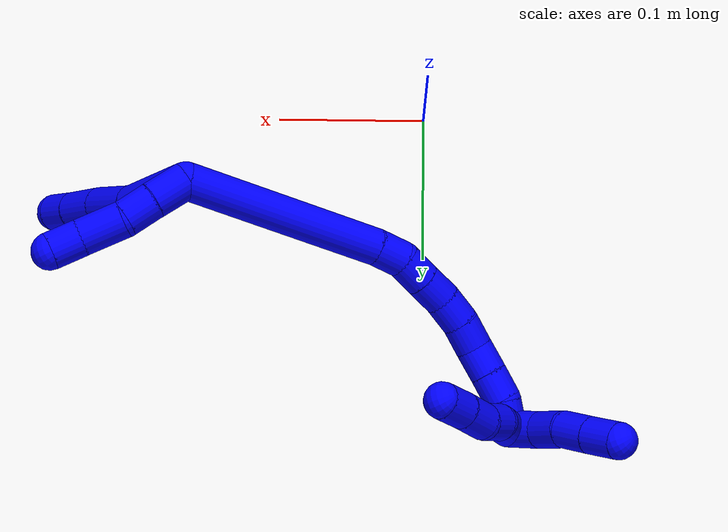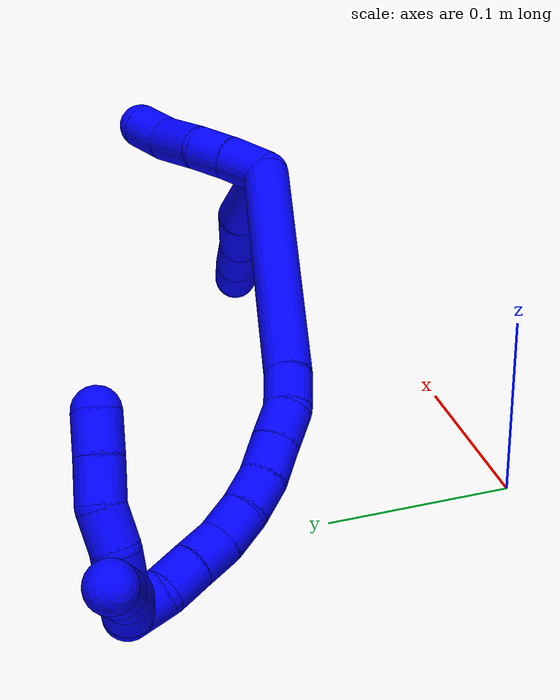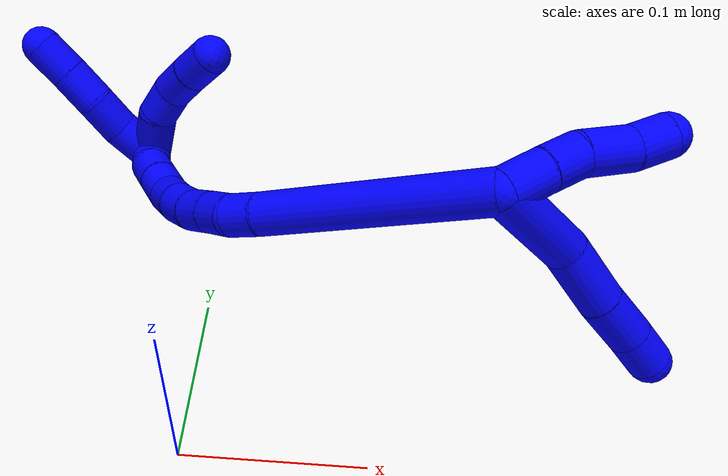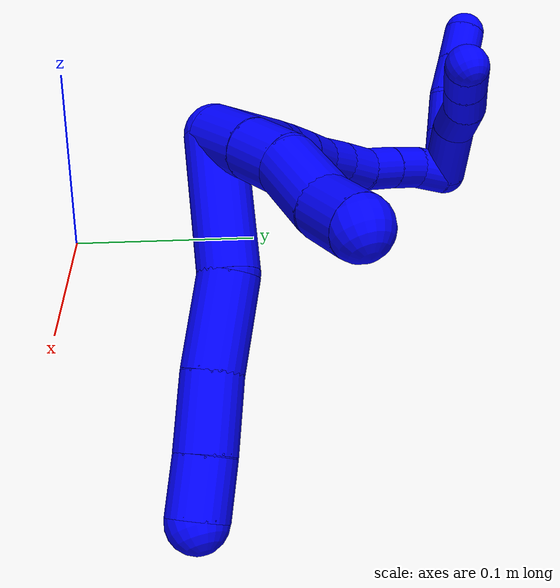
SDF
<sdf version="1.7">
 <world name="default">
  <model name="1">
   <static>0</static>
   <link name="1">
    <collision name="collision-cylinder-e_1_2_8">
     <pose>-0.005585 -0.004807 -0.027696 2.96976 -0.196118 -1.70333</pose>
     <geometry><cylinder><radius>0.0125</radius><length>0.057319</length></cylinder></geometry>
     <surface>
      <friction><ode><mu>1.16</mu><mu2>1.16</mu2><slip1>0</slip1><slip2>0</slip2></ode></friction>
      <contact><ode><kp>1e+06</kp><kd>1</kd><max_vel>0</max_vel><min_depth>0.001</min_depth></ode></contact>
     </surface>
    </collision>
    <visual name="visual-cylinder-e_1_2_8">
     <pose>-0.005585 -0.004807 -0.027696 2.96976 -0.196118 -1.70333</pose>
     <geometry><cylinder><radius>0.0125</radius><length>0.057319</length></cylinder></geometry>
     <material><ambient>0 0 1 1</ambient></material>
    </visual>
    <collision name="collision-cylinder-e_2_8_9">
     <pose>-0.015736 -0.017608 -0.072221 2.69811 -0.240388 -0.983619</pose>
     <geometry><cylinder><radius>0.0125</radius><length>0.038365</length></cylinder></geometry>
     <surface>
      <friction><ode><mu>1.16</mu><mu2>1.16</mu2><slip1>0</slip1><slip2>0</slip2></ode></friction>
      <contact><ode><kp>1e+06</kp><kd>1</kd><max_vel>0</max_vel><min_depth>0.001</min_depth></ode></contact>
     </surface>
    </collision>
    <visual name="visual-cylinder-e_2_8_9">
     <pose>-0.015736 -0.017608 -0.072221 2.69811 -0.240388 -0.983619</pose>
     <geometry><cylinder><radius>0.0125</radius><length>0.038365</length></cylinder></geometry>
     <material><ambient>0 0 1 1</ambient></material>
    </visual>
    <collision name="collision-cylinder-e_3_9_10">
     <pose>-0.023464 -0.030834 -0.103211 2.78771 -0.206347 -1.04976</pose>
     <geometry><cylinder><radius>0.0125</radius><length>0.030848</length></cylinder></geometry>
     <surface>
      <friction><ode><mu>1.16</mu><mu2>1.16</mu2><slip1>0</slip1><slip2>0</slip2></ode></friction>
      <contact><ode><kp>1e+06</kp><kd>1</kd><max_vel>0</max_vel><min_depth>0.001</min_depth></ode></contact>
     </surface>
    </collision>
    <visual name="visual-cylinder-e_3_9_10">
     <pose>-0.023464 -0.030834 -0.103211 2.78771 -0.206347 -1.04976</pose>
     <geometry><cylinder><radius>0.0125</radius><length>0.030848</length></cylinder></geometry>
     <material><ambient>0 0 1 1</ambient></material>
    </visual>
    <collision name="collision-cylinder-e_4_10_6">
     <pose>-0.029229 -0.040488 -0.127924 2.74467 -0.223902 -1.01946</pose>
     <geometry><cylinder><radius>0.0125</radius><length>0.023468</length></cylinder></geometry>
     <surface>
      <friction><ode><mu>1.16</mu><mu2>1.16</mu2><slip1>0</slip1><slip2>0</slip2></ode></friction>
      <contact><ode><kp>1e+06</kp><kd>1</kd><max_vel>0</max_vel><min_depth>0.001</min_depth></ode></contact>
     </surface>
    </collision>
    <visual name="visual-cylinder-e_4_10_6">
     <pose>-0.029229 -0.040488 -0.127924 2.74467 -0.223902 -1.01946</pose>
     <geometry><cylinder><radius>0.0125</radius><length>0.023468</length></cylinder></geometry>
     <material><ambient>0 0 1 1</ambient></material>
    </visual>
    <collision name="collision-cylinder-e_1_2_11">
     <pose>0.006742 0.005735 -0.009243 -2.5863 0.554837 -1.56994</pose>
     <geometry><cylinder><radius>0.0125</radius><length>0.025595</length></cylinder></geometry>
     <surface>
      <friction><ode><mu>1.16</mu><mu2>1.16</mu2><slip1>0</slip1><slip2>0</slip2></ode></friction>
      <contact><ode><kp>1e+06</kp><kd>1</kd><max_vel>0</max_vel><min_depth>0.001</min_depth></ode></contact>
     </surface>
    </collision>
    <visual name="visual-cylinder-e_1_2_11">
     <pose>0.006742 0.005735 -0.009243 -2.5863 0.554837 -1.56994</pose>
     <geometry><cylinder><radius>0.0125</radius><length>0.025595</length></cylinder></geometry>
     <material><ambient>0 0 1 1</ambient></material>
    </visual>
    <collision name="collision-cylinder-e_2_11_12">
     <pose>0.018677 0.016365 -0.026684 -2.60321 0.498164 -1.48965</pose>
     <geometry><cylinder><radius>0.0125</radius><length>0.021739</length></cylinder></geometry>
     <surface>
      <friction><ode><mu>1.16</mu><mu2>1.16</mu2><slip1>0</slip1><slip2>0</slip2></ode></friction>
      <contact><ode><kp>1e+06</kp><kd>1</kd><max_vel>0</max_vel><min_depth>0.001</min_depth></ode></contact>
     </surface>
    </collision>
    <visual name="visual-cylinder-e_2_11_12">
     <pose>0.018677 0.016365 -0.026684 -2.60321 0.498164 -1.48965</pose>
     <geometry><cylinder><radius>0.0125</radius><length>0.021739</length></cylinder></geometry>
     <material><ambient>0 0 1 1</ambient></material>
    </visual>
    <collision name="collision-cylinder-e_3_12_13">
     <pose>0.030221 0.02448 -0.048461 -2.90883 0.427029 -2.15255</pose>
     <geometry><cylinder><radius>0.0125</radius><length>0.030664</length></cylinder></geometry>
     <surface>
      <friction><ode><mu>1.16</mu><mu2>1.16</mu2><slip1>0</slip1><slip2>0</slip2></ode></friction>
      <contact><ode><kp>1e+06</kp><kd>1</kd><max_vel>0</max_vel><min_depth>0.001</min_depth></ode></contact>
     </surface>
    </collision>
    <visual name="visual-cylinder-e_3_12_13">
     <pose>0.030221 0.02448 -0.048461 -2.90883 0.427029 -2.15255</pose>
     <geometry><cylinder><radius>0.0125</radius><length>0.030664</length></cylinder></geometry>
     <material><ambient>0 0 1 1</ambient></material>
    </visual>
    <collision name="collision-cylinder-e_4_13_5">
     <pose>0.042822 0.031203 -0.070386 -2.74413 0.604339 -1.99438</pose>
     <geometry><cylinder><radius>0.0125</radius><length>0.022002</length></cylinder></geometry>
     <surface>
      <friction><ode><mu>1.16</mu><mu2>1.16</mu2><slip1>0</slip1><slip2>0</slip2></ode></friction>
      <contact><ode><kp>1e+06</kp><kd>1</kd><max_vel>0</max_vel><min_depth>0.001</min_depth></ode></contact>
     </surface>
    </collision>
    <visual name="visual-cylinder-e_4_13_5">
     <pose>0.042822 0.031203 -0.070386 -2.74413 0.604339 -1.99438</pose>
     <geometry><cylinder><radius>0.0125</radius><length>0.022002</length></cylinder></geometry>
     <material><ambient>0 0 1 1</ambient></material>
    </visual>
    <collision name="collision-cylinder-e_1_2_14">
     <pose>-0.060368 0.017391 0.029592 -0.531326 -1.05379 0.31398</pose>
     <geometry><cylinder><radius>0.0125</radius><length>0.138887</length></cylinder></geometry>
     <surface>
      <friction><ode><mu>1.16</mu><mu2>1.16</mu2><slip1>0</slip1><slip2>0</slip2></ode></friction>
      <contact><ode><kp>1e+06</kp><kd>1</kd><max_vel>0</max_vel><min_depth>0.001</min_depth></ode></contact>
     </surface>
    </collision>
    <visual name="visual-cylinder-e_1_2_14">
     <pose>-0.060368 0.017391 0.029592 -0.531326 -1.05379 0.31398</pose>
     <geometry><cylinder><radius>0.0125</radius><length>0.138887</length></cylinder></geometry>
     <material><ambient>0 0 1 1</ambient></material>
    </visual>
    <collision name="collision-cylinder-e_2_14_15">
     <pose>-0.129758 0.038184 0.062881 -0.743822 -1.0628 0.450769</pose>
     <geometry><cylinder><radius>0.0125</radius><length>0.020654</length></cylinder></geometry>
     <surface>
      <friction><ode><mu>1.16</mu><mu2>1.16</mu2><slip1>0</slip1><slip2>0</slip2></ode></friction>
      <contact><ode><kp>1e+06</kp><kd>1</kd><max_vel>0</max_vel><min_depth>0.001</min_depth></ode></contact>
     </surface>
    </collision>
    <visual name="visual-cylinder-e_2_14_15">
     <pose>-0.129758 0.038184 0.062881 -0.743822 -1.0628 0.450769</pose>
     <geometry><cylinder><radius>0.0125</radius><length>0.020654</length></cylinder></geometry>
     <material><ambient>0 0 1 1</ambient></material>
    </visual>
    <collision name="collision-cylinder-e_3_15_16">
     <pose>-0.147136 0.047048 0.067789 -1.35262 -0.980723 0.80959</pose>
     <geometry><cylinder><radius>0.0125</radius><length>0.020112</length></cylinder></geometry>
     <surface>
      <friction><ode><mu>1.16</mu><mu2>1.16</mu2><slip1>0</slip1><slip2>0</slip2></ode></friction>
      <contact><ode><kp>1e+06</kp><kd>1</kd><max_vel>0</max_vel><min_depth>0.001</min_depth></ode></contact>
     </surface>
    </collision>
    <visual name="visual-cylinder-e_3_15_16">
     <pose>-0.147136 0.047048 0.067789 -1.35262 -0.980723 0.80959</pose>
     <geometry><cylinder><radius>0.0125</radius><length>0.020112</length></cylinder></geometry>
     <material><ambient>0 0 1 1</ambient></material>
    </visual>
    <collision name="collision-cylinder-e_4_16_17">
     <pose>-0.164006 0.057755 0.070213 -1.3435 -1.00704 0.825677</pose>
     <geometry><cylinder><radius>0.0125</radius><length>0.020145</length></cylinder></geometry>
     <surface>
      <friction><ode><mu>1.16</mu><mu2>1.16</mu2><slip1>0</slip1><slip2>0</slip2></ode></friction>
      <contact><ode><kp>1e+06</kp><kd>1</kd><max_vel>0</max_vel><min_depth>0.001</min_depth></ode></contact>
     </surface>
    </collision>
    <visual name="visual-cylinder-e_4_16_17">
     <pose>-0.164006 0.057755 0.070213 -1.3435 -1.00704 0.825677</pose>
     <geometry><cylinder><radius>0.0125</radius><length>0.020145</length></cylinder></geometry>
     <material><ambient>0 0 1 1</ambient></material>
    </visual>
    <collision name="collision-cylinder-e_5_17_18">
     <pose>-0.179966 0.069676 0.072297 -1.44101 -0.835571 0.743271</pose>
     <geometry><cylinder><radius>0.0125</radius><length>0.020079</length></cylinder></geometry>
     <surface>
      <friction><ode><mu>1.16</mu><mu2>1.16</mu2><slip1>0</slip1><slip2>0</slip2></ode></friction>
      <contact><ode><kp>1e+06</kp><kd>1</kd><max_vel>0</max_vel><min_depth>0.001</min_depth></ode></contact>
     </surface>
    </collision>
    <visual name="visual-cylinder-e_5_17_18">
     <pose>-0.179966 0.069676 0.072297 -1.44101 -0.835571 0.743271</pose>
     <geometry><cylinder><radius>0.0125</radius><length>0.020079</length></cylinder></geometry>
     <material><ambient>0 0 1 1</ambient></material>
    </visual>
    <collision name="collision-cylinder-e_6_18_19">
     <pose>-0.194207 0.083698 0.072682 -1.63691 -0.745441 0.791409</pose>
     <geometry><cylinder><radius>0.0125</radius><length>0.020035</length></cylinder></geometry>
     <surface>
      <friction><ode><mu>1.16</mu><mu2>1.16</mu2><slip1>0</slip1><slip2>0</slip2></ode></friction>
      <contact><ode><kp>1e+06</kp><kd>1</kd><max_vel>0</max_vel><min_depth>0.001</min_depth></ode></contact>
     </surface>
    </collision>
    <visual name="visual-cylinder-e_6_18_19">
     <pose>-0.194207 0.083698 0.072682 -1.63691 -0.745441 0.791409</pose>
     <geometry><cylinder><radius>0.0125</radius><length>0.020035</length></cylinder></geometry>
     <material><ambient>0 0 1 1</ambient></material>
    </visual>
    <collision name="collision-cylinder-e_7_19_20">
     <pose>-0.206062 0.099666 0.073111 -1.46505 -0.528257 0.477251</pose>
     <geometry><cylinder><radius>0.0125</radius><length>0.020078</length></cylinder></geometry>
     <surface>
      <friction><ode><mu>1.16</mu><mu2>1.16</mu2><slip1>0</slip1><slip2>0</slip2></ode></friction>
      <contact><ode><kp>1e+06</kp><kd>1</kd><max_vel>0</max_vel><min_depth>0.001</min_depth></ode></contact>
     </surface>
    </collision>
    <visual name="visual-cylinder-e_7_19_20">
     <pose>-0.206062 0.099666 0.073111 -1.46505 -0.528257 0.477251</pose>
     <geometry><cylinder><radius>0.0125</radius><length>0.020078</length></cylinder></geometry>
     <material><ambient>0 0 1 1</ambient></material>
    </visual>
    <collision name="collision-cylinder-e_8_20_21">
     <pose>-0.216342 0.116801 0.074614 -1.50189 -0.548954 0.514016</pose>
     <geometry><cylinder><radius>0.0125</radius><length>0.020006</length></cylinder></geometry>
     <surface>
      <friction><ode><mu>1.16</mu><mu2>1.16</mu2><slip1>0</slip1><slip2>0</slip2></ode></friction>
      <contact><ode><kp>1e+06</kp><kd>1</kd><max_vel>0</max_vel><min_depth>0.001</min_depth></ode></contact>
     </surface>
    </collision>
    <visual name="visual-cylinder-e_8_20_21">
     <pose>-0.216342 0.116801 0.074614 -1.50189 -0.548954 0.514016</pose>
     <geometry><cylinder><radius>0.0125</radius><length>0.020006</length></cylinder></geometry>
     <material><ambient>0 0 1 1</ambient></material>
    </visual>
    <collision name="collision-cylinder-e_9_21_1">
     <pose>-0.225875 0.134028 0.072858 -1.83352 -0.445959 0.575176</pose>
     <geometry><cylinder><radius>0.0125</radius><length>0.020002</length></cylinder></geometry>
     <surface>
      <friction><ode><mu>1.16</mu><mu2>1.16</mu2><slip1>0</slip1><slip2>0</slip2></ode></friction>
      <contact><ode><kp>1e+06</kp><kd>1</kd><max_vel>0</max_vel><min_depth>0.001</min_depth></ode></contact>
     </surface>
    </collision>
    <visual name="visual-cylinder-e_9_21_1">
     <pose>-0.225875 0.134028 0.072858 -1.83352 -0.445959 0.575176</pose>
     <geometry><cylinder><radius>0.0125</radius><length>0.020002</length></cylinder></geometry>
     <material><ambient>0 0 1 1</ambient></material>
    </visual>
    <collision name="collision-cylinder-e_1_1_22">
     <pose>-0.21489 0.146567 0.076754 -0.550005 1.12458 -0.351916</pose>
     <geometry><cylinder><radius>0.0125</radius><length>0.033919</length></cylinder></geometry>
     <surface>
      <friction><ode><mu>1.16</mu><mu2>1.16</mu2><slip1>0</slip1><slip2>0</slip2></ode></friction>
      <contact><ode><kp>1e+06</kp><kd>1</kd><max_vel>0</max_vel><min_depth>0.001</min_depth></ode></contact>
     </surface>
    </collision>
    <visual name="visual-cylinder-e_1_1_22">
     <pose>-0.21489 0.146567 0.076754 -0.550005 1.12458 -0.351916</pose>
     <geometry><cylinder><radius>0.0125</radius><length>0.033919</length></cylinder></geometry>
     <material><ambient>0 0 1 1</ambient></material>
    </visual>
    <collision name="collision-cylinder-e_2_22_23">
     <pose>-0.189404 0.152936 0.083306 -1.44869 1.32436 -1.20767</pose>
     <geometry><cylinder><radius>0.0125</radius><length>0.021009</length></cylinder></geometry>
     <surface>
      <friction><ode><mu>1.16</mu><mu2>1.16</mu2><slip1>0</slip1><slip2>0</slip2></ode></friction>
      <contact><ode><kp>1e+06</kp><kd>1</kd><max_vel>0</max_vel><min_depth>0.001</min_depth></ode></contact>
     </surface>
    </collision>
    <visual name="visual-cylinder-e_2_22_23">
     <pose>-0.189404 0.152936 0.083306 -1.44869 1.32436 -1.20767</pose>
     <geometry><cylinder><radius>0.0125</radius><length>0.021009</length></cylinder></geometry>
     <material><ambient>0 0 1 1</ambient></material>
    </visual>
    <collision name="collision-cylinder-e_3_23_24">
     <pose>-0.167697 0.154463 0.083611 1.57765 1.48277 1.4896</pose>
     <geometry><cylinder><radius>0.0125</radius><length>0.023129</length></cylinder></geometry>
     <surface>
      <friction><ode><mu>1.16</mu><mu2>1.16</mu2><slip1>0</slip1><slip2>0</slip2></ode></friction>
      <contact><ode><kp>1e+06</kp><kd>1</kd><max_vel>0</max_vel><min_depth>0.001</min_depth></ode></contact>
     </surface>
    </collision>
    <visual name="visual-cylinder-e_3_23_24">
     <pose>-0.167697 0.154463 0.083611 1.57765 1.48277 1.4896</pose>
     <geometry><cylinder><radius>0.0125</radius><length>0.023129</length></cylinder></geometry>
     <material><ambient>0 0 1 1</ambient></material>
    </visual>
    <collision name="collision-cylinder-e_4_24_4">
     <pose>-0.145256 0.152546 0.083062 2.11287 1.47488 2.0286</pose>
     <geometry><cylinder><radius>0.0125</radius><length>0.021943</length></cylinder></geometry>
     <surface>
      <friction><ode><mu>1.16</mu><mu2>1.16</mu2><slip1>0</slip1><slip2>0</slip2></ode></friction>
      <contact><ode><kp>1e+06</kp><kd>1</kd><max_vel>0</max_vel><min_depth>0.001</min_depth></ode></contact>
     </surface>
    </collision>
    <visual name="visual-cylinder-e_4_24_4">
     <pose>-0.145256 0.152546 0.083062 2.11287 1.47488 2.0286</pose>
     <geometry><cylinder><radius>0.0125</radius><length>0.021943</length></cylinder></geometry>
     <material><ambient>0 0 1 1</ambient></material>
    </visual>
    <collision name="collision-cylinder-e_1_1_25">
     <pose>-0.229321 0.148023 0.08318 -0.39507 0.063187 -0.012651</pose>
     <geometry><cylinder><radius>0.0125</radius><length>0.0275</length></cylinder></geometry>
     <surface>
      <friction><ode><mu>1.16</mu><mu2>1.16</mu2><slip1>0</slip1><slip2>0</slip2></ode></friction>
      <contact><ode><kp>1e+06</kp><kd>1</kd><max_vel>0</max_vel><min_depth>0.001</min_depth></ode></contact>
     </surface>
    </collision>
    <visual name="visual-cylinder-e_1_1_25">
     <pose>-0.229321 0.148023 0.08318 -0.39507 0.063187 -0.012651</pose>
     <geometry><cylinder><radius>0.0125</radius><length>0.0275</length></cylinder></geometry>
     <material><ambient>0 0 1 1</ambient></material>
    </visual>
    <collision name="collision-cylinder-e_2_25_26">
     <pose>-0.225305 0.1578 0.106707 -0.392447 0.261579 -0.052284</pose>
     <geometry><cylinder><radius>0.0125</radius><length>0.024339</length></cylinder></geometry>
     <surface>
      <friction><ode><mu>1.16</mu><mu2>1.16</mu2><slip1>0</slip1><slip2>0</slip2></ode></friction>
      <contact><ode><kp>1e+06</kp><kd>1</kd><max_vel>0</max_vel><min_depth>0.001</min_depth></ode></contact>
     </surface>
    </collision>
    <visual name="visual-cylinder-e_2_25_26">
     <pose>-0.225305 0.1578 0.106707 -0.392447 0.261579 -0.052284</pose>
     <geometry><cylinder><radius>0.0125</radius><length>0.024339</length></cylinder></geometry>
     <material><ambient>0 0 1 1</ambient></material>
    </visual>
    <collision name="collision-cylinder-e_3_26_27">
     <pose>-0.220908 0.168513 0.127888 -0.542229 0.103453 -0.028779</pose>
     <geometry><cylinder><radius>0.0125</radius><length>0.024224</length></cylinder></geometry>
     <surface>
      <friction><ode><mu>1.16</mu><mu2>1.16</mu2><slip1>0</slip1><slip2>0</slip2></ode></friction>
      <contact><ode><kp>1e+06</kp><kd>1</kd><max_vel>0</max_vel><min_depth>0.001</min_depth></ode></contact>
     </surface>
    </collision>
    <visual name="visual-cylinder-e_3_26_27">
     <pose>-0.220908 0.168513 0.127888 -0.542229 0.103453 -0.028779</pose>
     <geometry><cylinder><radius>0.0125</radius><length>0.024224</length></cylinder></geometry>
     <material><ambient>0 0 1 1</ambient></material>
    </visual>
    <collision name="collision-cylinder-e_4_27_3">
     <pose>-0.218711 0.180695 0.14854 -0.523617 0.079126 -0.021213</pose>
     <geometry><cylinder><radius>0.0125</radius><length>0.023938</length></cylinder></geometry>
     <surface>
      <friction><ode><mu>1.16</mu><mu2>1.16</mu2><slip1>0</slip1><slip2>0</slip2></ode></friction>
      <contact><ode><kp>1e+06</kp><kd>1</kd><max_vel>0</max_vel><min_depth>0.001</min_depth></ode></contact>
     </surface>
    </collision>
    <visual name="visual-cylinder-e_4_27_3">
     <pose>-0.218711 0.180695 0.14854 -0.523617 0.079126 -0.021213</pose>
     <geometry><cylinder><radius>0.0125</radius><length>0.023938</length></cylinder></geometry>
     <material><ambient>0 0 1 1</ambient></material>
    </visual>
    <collision name="collision-sphere-3">
     <pose>-0.217765 0.186661 0.158873 0 -0 0</pose>
     <geometry><sphere><radius>0.0125</radius></sphere></geometry>
     <surface>
      <friction><ode><mu>1.16</mu><mu2>1.16</mu2><slip1>0</slip1><slip2>0</slip2></ode></friction>
      <contact><ode><kp>1e+06</kp><kd>1</kd><max_vel>0</max_vel><min_depth>0.001</min_depth></ode></contact>
     </surface>
    </collision>
    <visual name="visual-sphere-3">
     <pose>-0.217765 0.186661 0.158873 0 -0 0</pose>
     <geometry><sphere><radius>0.0125</radius></sphere></geometry>
     <material><ambient>0 0 1 1</ambient></material>
    </visual>
    <collision name="collision-sphere-27">
     <pose>-0.219657 0.17473 0.138207 0 -0 0</pose>
     <geometry><sphere><radius>0.0125</radius></sphere></geometry>
     <surface>
      <friction><ode><mu>1.16</mu><mu2>1.16</mu2><slip1>0</slip1><slip2>0</slip2></ode></friction>
      <contact><ode><kp>1e+06</kp><kd>1</kd><max_vel>0</max_vel><min_depth>0.001</min_depth></ode></contact>
     </surface>
    </collision>
    <visual name="visual-sphere-27">
     <pose>-0.219657 0.17473 0.138207 0 -0 0</pose>
     <geometry><sphere><radius>0.0125</radius></sphere></geometry>
     <material><ambient>0 0 1 1</ambient></material>
    </visual>
    <collision name="collision-sphere-26">
     <pose>-0.222158 0.162296 0.117569 0 -0 0</pose>
     <geometry><sphere><radius>0.0125</radius></sphere></geometry>
     <surface>
      <friction><ode><mu>1.16</mu><mu2>1.16</mu2><slip1>0</slip1><slip2>0</slip2></ode></friction>
      <contact><ode><kp>1e+06</kp><kd>1</kd><max_vel>0</max_vel><min_depth>0.001</min_depth></ode></contact>
     </surface>
    </collision>
    <visual name="visual-sphere-26">
     <pose>-0.222158 0.162296 0.117569 0 -0 0</pose>
     <geometry><sphere><radius>0.0125</radius></sphere></geometry>
     <material><ambient>0 0 1 1</ambient></material>
    </visual>
    <collision name="collision-sphere-25">
     <pose>-0.228452 0.153304 0.095846 0 -0 0</pose>
     <geometry><sphere><radius>0.0125</radius></sphere></geometry>
     <surface>
      <friction><ode><mu>1.16</mu><mu2>1.16</mu2><slip1>0</slip1><slip2>0</slip2></ode></friction>
      <contact><ode><kp>1e+06</kp><kd>1</kd><max_vel>0</max_vel><min_depth>0.001</min_depth></ode></contact>
     </surface>
    </collision>
    <visual name="visual-sphere-25">
     <pose>-0.228452 0.153304 0.095846 0 -0 0</pose>
     <geometry><sphere><radius>0.0125</radius></sphere></geometry>
     <material><ambient>0 0 1 1</ambient></material>
    </visual>
    <collision name="collision-sphere-4">
     <pose>-0.134335 0.151646 0.08252 0 -0 0</pose>
     <geometry><sphere><radius>0.0125</radius></sphere></geometry>
     <surface>
      <friction><ode><mu>1.16</mu><mu2>1.16</mu2><slip1>0</slip1><slip2>0</slip2></ode></friction>
      <contact><ode><kp>1e+06</kp><kd>1</kd><max_vel>0</max_vel><min_depth>0.001</min_depth></ode></contact>
     </surface>
    </collision>
    <visual name="visual-sphere-4">
     <pose>-0.134335 0.151646 0.08252 0 -0 0</pose>
     <geometry><sphere><radius>0.0125</radius></sphere></geometry>
     <material><ambient>0 0 1 1</ambient></material>
    </visual>
    <collision name="collision-sphere-24">
     <pose>-0.156177 0.153446 0.083604 0 -0 0</pose>
     <geometry><sphere><radius>0.0125</radius></sphere></geometry>
     <surface>
      <friction><ode><mu>1.16</mu><mu2>1.16</mu2><slip1>0</slip1><slip2>0</slip2></ode></friction>
      <contact><ode><kp>1e+06</kp><kd>1</kd><max_vel>0</max_vel><min_depth>0.001</min_depth></ode></contact>
     </surface>
    </collision>
    <visual name="visual-sphere-24">
     <pose>-0.156177 0.153446 0.083604 0 -0 0</pose>
     <geometry><sphere><radius>0.0125</radius></sphere></geometry>
     <material><ambient>0 0 1 1</ambient></material>
    </visual>
    <collision name="collision-sphere-23">
     <pose>-0.179217 0.155479 0.083618 0 -0 0</pose>
     <geometry><sphere><radius>0.0125</radius></sphere></geometry>
     <surface>
      <friction><ode><mu>1.16</mu><mu2>1.16</mu2><slip1>0</slip1><slip2>0</slip2></ode></friction>
      <contact><ode><kp>1e+06</kp><kd>1</kd><max_vel>0</max_vel><min_depth>0.001</min_depth></ode></contact>
     </surface>
    </collision>
    <visual name="visual-sphere-23">
     <pose>-0.179217 0.155479 0.083618 0 -0 0</pose>
     <geometry><sphere><radius>0.0125</radius></sphere></geometry>
     <material><ambient>0 0 1 1</ambient></material>
    </visual>
    <collision name="collision-sphere-22">
     <pose>-0.199591 0.150392 0.082994 0 -0 0</pose>
     <geometry><sphere><radius>0.0125</radius></sphere></geometry>
     <surface>
      <friction><ode><mu>1.16</mu><mu2>1.16</mu2><slip1>0</slip1><slip2>0</slip2></ode></friction>
      <contact><ode><kp>1e+06</kp><kd>1</kd><max_vel>0</max_vel><min_depth>0.001</min_depth></ode></contact>
     </surface>
    </collision>
    <visual name="visual-sphere-22">
     <pose>-0.199591 0.150392 0.082994 0 -0 0</pose>
     <geometry><sphere><radius>0.0125</radius></sphere></geometry>
     <material><ambient>0 0 1 1</ambient></material>
    </visual>
    <collision name="collision-sphere-1">
     <pose>-0.230189 0.142741 0.070515 0 -0 0</pose>
     <geometry><sphere><radius>0.0125</radius></sphere></geometry>
     <surface>
      <friction><ode><mu>1.16</mu><mu2>1.16</mu2><slip1>0</slip1><slip2>0</slip2></ode></friction>
      <contact><ode><kp>1e+06</kp><kd>1</kd><max_vel>0</max_vel><min_depth>0.001</min_depth></ode></contact>
     </surface>
    </collision>
    <visual name="visual-sphere-1">
     <pose>-0.230189 0.142741 0.070515 0 -0 0</pose>
     <geometry><sphere><radius>0.0125</radius></sphere></geometry>
     <material><ambient>0 0 1 1</ambient></material>
    </visual>
    <collision name="collision-sphere-21">
     <pose>-0.221561 0.125314 0.075201 0 -0 0</pose>
     <geometry><sphere><radius>0.0125</radius></sphere></geometry>
     <surface>
      <friction><ode><mu>1.16</mu><mu2>1.16</mu2><slip1>0</slip1><slip2>0</slip2></ode></friction>
      <contact><ode><kp>1e+06</kp><kd>1</kd><max_vel>0</max_vel><min_depth>0.001</min_depth></ode></contact>
     </surface>
    </collision>
    <visual name="visual-sphere-21">
     <pose>-0.221561 0.125314 0.075201 0 -0 0</pose>
     <geometry><sphere><radius>0.0125</radius></sphere></geometry>
     <material><ambient>0 0 1 1</ambient></material>
    </visual>
    <collision name="collision-sphere-11">
     <pose>0.013483 0.011469 -0.018486 0 -0 0</pose>
     <geometry><sphere><radius>0.0125</radius></sphere></geometry>
     <surface>
      <friction><ode><mu>1.16</mu><mu2>1.16</mu2><slip1>0</slip1><slip2>0</slip2></ode></friction>
      <contact><ode><kp>1e+06</kp><kd>1</kd><max_vel>0</max_vel><min_depth>0.001</min_depth></ode></contact>
     </surface>
    </collision>
    <visual name="visual-sphere-11">
     <pose>0.013483 0.011469 -0.018486 0 -0 0</pose>
     <geometry><sphere><radius>0.0125</radius></sphere></geometry>
     <material><ambient>0 0 1 1</ambient></material>
    </visual>
    <collision name="collision-sphere-6">
     <pose>-0.031834 -0.044911 -0.138475 0 -0 0</pose>
     <geometry><sphere><radius>0.0125</radius></sphere></geometry>
     <surface>
      <friction><ode><mu>1.16</mu><mu2>1.16</mu2><slip1>0</slip1><slip2>0</slip2></ode></friction>
      <contact><ode><kp>1e+06</kp><kd>1</kd><max_vel>0</max_vel><min_depth>0.001</min_depth></ode></contact>
     </surface>
    </collision>
    <visual name="visual-sphere-6">
     <pose>-0.031834 -0.044911 -0.138475 0 -0 0</pose>
     <geometry><sphere><radius>0.0125</radius></sphere></geometry>
     <material><ambient>0 0 1 1</ambient></material>
    </visual>
    <collision name="collision-sphere-10">
     <pose>-0.026624 -0.036065 -0.117372 0 -0 0</pose>
     <geometry><sphere><radius>0.0125</radius></sphere></geometry>
     <surface>
      <friction><ode><mu>1.16</mu><mu2>1.16</mu2><slip1>0</slip1><slip2>0</slip2></ode></friction>
      <contact><ode><kp>1e+06</kp><kd>1</kd><max_vel>0</max_vel><min_depth>0.001</min_depth></ode></contact>
     </surface>
    </collision>
    <visual name="visual-sphere-10">
     <pose>-0.026624 -0.036065 -0.117372 0 -0 0</pose>
     <geometry><sphere><radius>0.0125</radius></sphere></geometry>
     <material><ambient>0 0 1 1</ambient></material>
    </visual>
    <collision name="collision-sphere-9">
     <pose>-0.020303 -0.025602 -0.08905 0 -0 0</pose>
     <geometry><sphere><radius>0.0125</radius></sphere></geometry>
     <surface>
      <friction><ode><mu>1.16</mu><mu2>1.16</mu2><slip1>0</slip1><slip2>0</slip2></ode></friction>
      <contact><ode><kp>1e+06</kp><kd>1</kd><max_vel>0</max_vel><min_depth>0.001</min_depth></ode></contact>
     </surface>
    </collision>
    <visual name="visual-sphere-9">
     <pose>-0.020303 -0.025602 -0.08905 0 -0 0</pose>
     <geometry><sphere><radius>0.0125</radius></sphere></geometry>
     <material><ambient>0 0 1 1</ambient></material>
    </visual>
    <collision name="collision-sphere-2">
     <geometry><sphere><radius>0.0125</radius></sphere></geometry>
     <surface>
      <friction><ode><mu>1.16</mu><mu2>1.16</mu2><slip1>0</slip1><slip2>0</slip2></ode></friction>
      <contact><ode><kp>1e+06</kp><kd>1</kd><max_vel>0</max_vel><min_depth>0.001</min_depth></ode></contact>
     </surface>
    </collision>
    <visual name="visual-sphere-2">
     <geometry><sphere><radius>0.0125</radius></sphere></geometry>
     <material><ambient>0 0 1 1</ambient></material>
    </visual>
    <collision name="collision-sphere-19">
     <pose>-0.201002 0.091043 0.072196 0 -0 0</pose>
     <geometry><sphere><radius>0.0125</radius></sphere></geometry>
     <surface>
      <friction><ode><mu>1.16</mu><mu2>1.16</mu2><slip1>0</slip1><slip2>0</slip2></ode></friction>
      <contact><ode><kp>1e+06</kp><kd>1</kd><max_vel>0</max_vel><min_depth>0.001</min_depth></ode></contact>
     </surface>
    </collision>
    <visual name="visual-sphere-19">
     <pose>-0.201002 0.091043 0.072196 0 -0 0</pose>
     <geometry><sphere><radius>0.0125</radius></sphere></geometry>
     <material><ambient>0 0 1 1</ambient></material>
    </visual>
    <collision name="collision-sphere-8">
     <pose>-0.011169 -0.009613 -0.055392 0 -0 0</pose>
     <geometry><sphere><radius>0.0125</radius></sphere></geometry>
     <surface>
      <friction><ode><mu>1.16</mu><mu2>1.16</mu2><slip1>0</slip1><slip2>0</slip2></ode></friction>
      <contact><ode><kp>1e+06</kp><kd>1</kd><max_vel>0</max_vel><min_depth>0.001</min_depth></ode></contact>
     </surface>
    </collision>
    <visual name="visual-sphere-8">
     <pose>-0.011169 -0.009613 -0.055392 0 -0 0</pose>
     <geometry><sphere><radius>0.0125</radius></sphere></geometry>
     <material><ambient>0 0 1 1</ambient></material>
    </visual>
    <collision name="collision-sphere-12">
     <pose>0.023871 0.021261 -0.034882 0 -0 0</pose>
     <geometry><sphere><radius>0.0125</radius></sphere></geometry>
     <surface>
      <friction><ode><mu>1.16</mu><mu2>1.16</mu2><slip1>0</slip1><slip2>0</slip2></ode></friction>
      <contact><ode><kp>1e+06</kp><kd>1</kd><max_vel>0</max_vel><min_depth>0.001</min_depth></ode></contact>
     </surface>
    </collision>
    <visual name="visual-sphere-12">
     <pose>0.023871 0.021261 -0.034882 0 -0 0</pose>
     <geometry><sphere><radius>0.0125</radius></sphere></geometry>
     <material><ambient>0 0 1 1</ambient></material>
    </visual>
    <collision name="collision-sphere-13">
     <pose>0.036571 0.027699 -0.06204 0 -0 0</pose>
     <geometry><sphere><radius>0.0125</radius></sphere></geometry>
     <surface>
      <friction><ode><mu>1.16</mu><mu2>1.16</mu2><slip1>0</slip1><slip2>0</slip2></ode></friction>
      <contact><ode><kp>1e+06</kp><kd>1</kd><max_vel>0</max_vel><min_depth>0.001</min_depth></ode></contact>
     </surface>
    </collision>
    <visual name="visual-sphere-13">
     <pose>0.036571 0.027699 -0.06204 0 -0 0</pose>
     <geometry><sphere><radius>0.0125</radius></sphere></geometry>
     <material><ambient>0 0 1 1</ambient></material>
    </visual>
    <collision name="collision-sphere-5">
     <pose>0.049073 0.034707 -0.078733 0 -0 0</pose>
     <geometry><sphere><radius>0.0125</radius></sphere></geometry>
     <surface>
      <friction><ode><mu>1.16</mu><mu2>1.16</mu2><slip1>0</slip1><slip2>0</slip2></ode></friction>
      <contact><ode><kp>1e+06</kp><kd>1</kd><max_vel>0</max_vel><min_depth>0.001</min_depth></ode></contact>
     </surface>
    </collision>
    <visual name="visual-sphere-5">
     <pose>0.049073 0.034707 -0.078733 0 -0 0</pose>
     <geometry><sphere><radius>0.0125</radius></sphere></geometry>
     <material><ambient>0 0 1 1</ambient></material>
    </visual>
    <collision name="collision-sphere-14">
     <pose>-0.120735 0.034783 0.059184 0 -0 0</pose>
     <geometry><sphere><radius>0.0125</radius></sphere></geometry>
     <surface>
      <friction><ode><mu>1.16</mu><mu2>1.16</mu2><slip1>0</slip1><slip2>0</slip2></ode></friction>
      <contact><ode><kp>1e+06</kp><kd>1</kd><max_vel>0</max_vel><min_depth>0.001</min_depth></ode></contact>
     </surface>
    </collision>
    <visual name="visual-sphere-14">
     <pose>-0.120735 0.034783 0.059184 0 -0 0</pose>
     <geometry><sphere><radius>0.0125</radius></sphere></geometry>
     <material><ambient>0 0 1 1</ambient></material>
    </visual>
    <collision name="collision-sphere-15">
     <pose>-0.138781 0.041585 0.066577 0 -0 0</pose>
     <geometry><sphere><radius>0.0125</radius></sphere></geometry>
     <surface>
      <friction><ode><mu>1.16</mu><mu2>1.16</mu2><slip1>0</slip1><slip2>0</slip2></ode></friction>
      <contact><ode><kp>1e+06</kp><kd>1</kd><max_vel>0</max_vel><min_depth>0.001</min_depth></ode></contact>
     </surface>
    </collision>
    <visual name="visual-sphere-15">
     <pose>-0.138781 0.041585 0.066577 0 -0 0</pose>
     <geometry><sphere><radius>0.0125</radius></sphere></geometry>
     <material><ambient>0 0 1 1</ambient></material>
    </visual>
    <collision name="collision-sphere-16">
     <pose>-0.155492 0.052511 0.069 0 -0 0</pose>
     <geometry><sphere><radius>0.0125</radius></sphere></geometry>
     <surface>
      <friction><ode><mu>1.16</mu><mu2>1.16</mu2><slip1>0</slip1><slip2>0</slip2></ode></friction>
      <contact><ode><kp>1e+06</kp><kd>1</kd><max_vel>0</max_vel><min_depth>0.001</min_depth></ode></contact>
     </surface>
    </collision>
    <visual name="visual-sphere-16">
     <pose>-0.155492 0.052511 0.069 0 -0 0</pose>
     <geometry><sphere><radius>0.0125</radius></sphere></geometry>
     <material><ambient>0 0 1 1</ambient></material>
    </visual>
    <collision name="collision-sphere-17">
     <pose>-0.17252 0.062999 0.071426 0 -0 0</pose>
     <geometry><sphere><radius>0.0125</radius></sphere></geometry>
     <surface>
      <friction><ode><mu>1.16</mu><mu2>1.16</mu2><slip1>0</slip1><slip2>0</slip2></ode></friction>
      <contact><ode><kp>1e+06</kp><kd>1</kd><max_vel>0</max_vel><min_depth>0.001</min_depth></ode></contact>
     </surface>
    </collision>
    <visual name="visual-sphere-17">
     <pose>-0.17252 0.062999 0.071426 0 -0 0</pose>
     <geometry><sphere><radius>0.0125</radius></sphere></geometry>
     <material><ambient>0 0 1 1</ambient></material>
    </visual>
    <collision name="collision-sphere-18">
     <pose>-0.187412 0.076354 0.073169 0 -0 0</pose>
     <geometry><sphere><radius>0.0125</radius></sphere></geometry>
     <surface>
      <friction><ode><mu>1.16</mu><mu2>1.16</mu2><slip1>0</slip1><slip2>0</slip2></ode></friction>
      <contact><ode><kp>1e+06</kp><kd>1</kd><max_vel>0</max_vel><min_depth>0.001</min_depth></ode></contact>
     </surface>
    </collision>
    <visual name="visual-sphere-18">
     <pose>-0.187412 0.076354 0.073169 0 -0 0</pose>
     <geometry><sphere><radius>0.0125</radius></sphere></geometry>
     <material><ambient>0 0 1 1</ambient></material>
    </visual>
    <collision name="collision-sphere-20">
     <pose>-0.211122 0.108288 0.074026 0 -0 0</pose>
     <geometry><sphere><radius>0.0125</radius></sphere></geometry>
     <surface>
      <friction><ode><mu>1.16</mu><mu2>1.16</mu2><slip1>0</slip1><slip2>0</slip2></ode></friction>
      <contact><ode><kp>1e+06</kp><kd>1</kd><max_vel>0</max_vel><min_depth>0.001</min_depth></ode></contact>
     </surface>
    </collision>
    <visual name="visual-sphere-20">
     <pose>-0.211122 0.108288 0.074026 0 -0 0</pose>
     <geometry><sphere><radius>0.0125</radius></sphere></geometry>
     <material><ambient>0 0 1 1</ambient></material>
    </visual>
    <inertial>
     <pose>-0.10455 0.061225 0.027687 0 -0 0</pose>
     <mass>0.75</mass>
     <inertia>
      <ixx>0.000122</ixx>
      <ixy>0</ixy>
      <ixz>0</ixz>
      <iyy>0.000263</iyy>
      <iyz>0</iyz>
      <izz>0.000129</izz>
     </inertia>
    </inertial>
   </link>
   <pose>0.157718 0.082119 0.126451 0.319542 -0.91378 -0.112698</pose>
  </model>
 </world>
</sdf>
